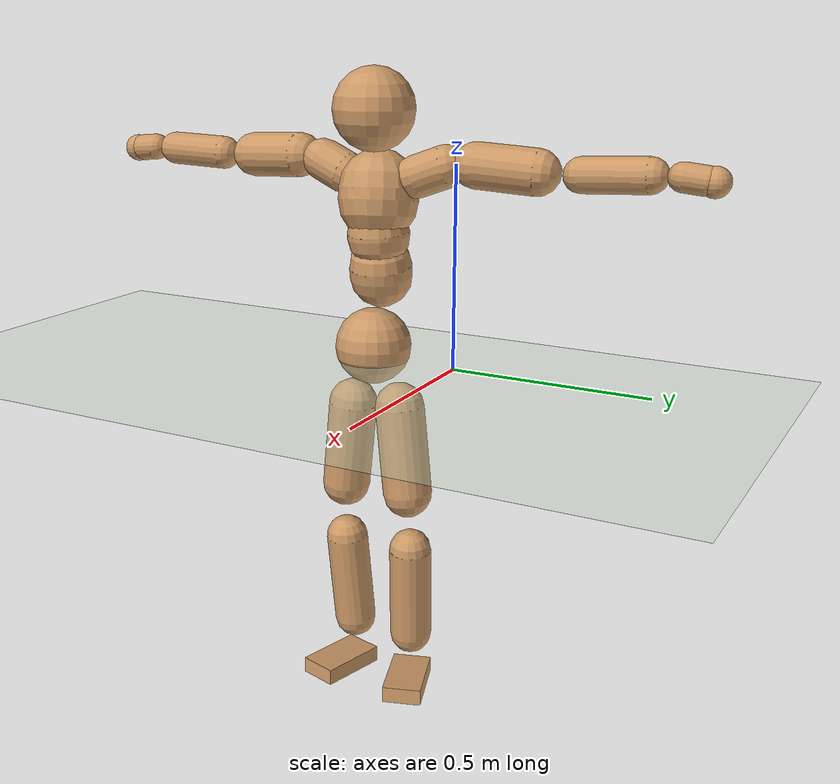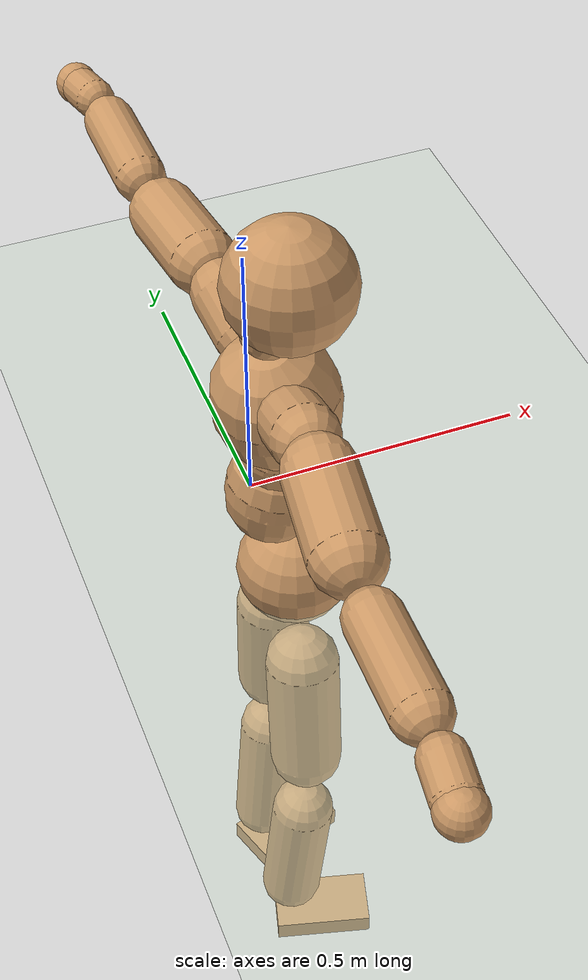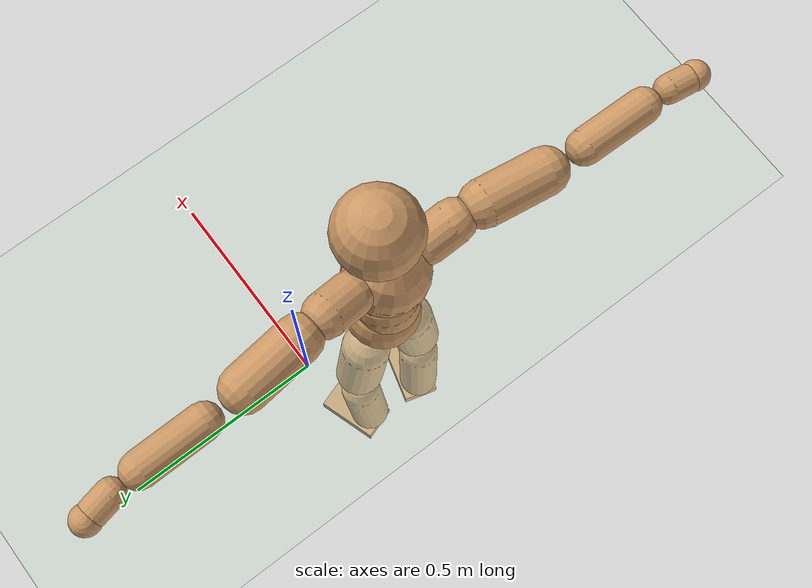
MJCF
<mujoco model="humanoid">
  <compiler coordinate="local"/>
  <default>
    <joint damping="0.0" armature="0.01" stiffness="0.0" limited="true"/>
    <geom conaffinity="1" condim="3" contype="7" margin="0.001" rgba="0.8 0.6 .4 1"/>
  </default>
  <asset>
    <texture type="skybox" builtin="gradient" rgb1=".4 .5 .6" rgb2="0 0 0" width="100" height="100"/>
    <texture builtin="flat" height="1278" mark="cross" markrgb="1 1 1" name="texgeom" random="0.01" rgb1="0.8 0.6 0.4" rgb2="0.8 0.6 0.4" type="cube" width="127"/>
    <texture builtin="checker" height="100" name="texplane" rgb1="0 0 0" rgb2="0.8 0.8 0.8" type="2d" width="100"/>
    <material name="MatPlane" reflectance="0.5" shininess="1" specular="1" texrepeat="60 60" texture="texplane"/>
    <material name="geom" texture="texgeom" texuniform="true"/>
  </asset>
  <worldbody>
    <light cutoff="100" diffuse="1 1 1" dir="-0 0 -1.3" directional="true" exponent="1" pos="0 0 1.3" specular=".1 .1 .1"/>
    <geom conaffinity="1" condim="3" name="floor" pos="0 0 0" rgba="0.8 0.9 0.8 1" size="100 100 .2" type="plane" material="MatPlane"/>
    <body name="Pelvis" pos="-0.0031 -0.2266 0.0322">
      <freejoint name="Pelvis"/>
      <geom type="sphere" contype="1" conaffinity="1" density="500" size="0.0968" pos="0.0000 0.0000 0.0000" name="Pelvis"/>
      <body name="L_Hip" pos="-0.017 0.0588 -0.0808">
        <joint name="L_Hip_x" type="hinge" pos="0 0 0" axis="1 0 0" stiffness="800" damping="80" armature="0.02" range="-180.0000 180.0000"/>
        <joint name="L_Hip_y" type="hinge" pos="0 0 0" axis="0 1 0" stiffness="800" damping="80" armature="0.02" range="-180.0000 180.0000"/>
        <joint name="L_Hip_z" type="hinge" pos="0 0 0" axis="0 0 1" stiffness="800" damping="80" armature="0.02" range="-180.0000 180.0000"/>
        <geom type="capsule" contype="1" conaffinity="1" density="500" fromto="0.0017 0.0088 -0.0773 0.0066 0.0350 -0.3091" size="0.0636" name="L_Hip"/>
        <body name="L_Knee" pos="0.0083 0.0438 -0.3863">
          <joint name="L_Knee_x" type="hinge" pos="0 0 0" axis="1 0 0" stiffness="800" damping="80" armature="0.02" range="-180.0000 180.0000"/>
          <joint name="L_Knee_y" type="hinge" pos="0 0 0" axis="0 1 0" stiffness="800" damping="80" armature="0.02" range="-180.0000 180.0000"/>
          <joint name="L_Knee_z" type="hinge" pos="0 0 0" axis="0 0 1" stiffness="800" damping="80" armature="0.02" range="-180.0000 180.0000"/>
          <geom type="capsule" contype="1" conaffinity="1" density="500" fromto="-0.0075 -0.0030 -0.0859 -0.0298 -0.0120 -0.3434" size="0.0554" name="L_Knee"/>
          <body name="L_Ankle" pos="-0.0373 -0.015 -0.4293">
            <joint name="L_Ankle_x" type="hinge" pos="0 0 0" axis="1 0 0" stiffness="800" damping="80" armature="0.02" range="-180.0000 180.0000"/>
            <joint name="L_Ankle_y" type="hinge" pos="0 0 0" axis="0 1 0" stiffness="800" damping="80" armature="0.02" range="-180.0000 180.0000"/>
            <joint name="L_Ankle_z" type="hinge" pos="0 0 0" axis="0 0 1" stiffness="800" damping="80" armature="0.02" range="-180.0000 180.0000"/>
            <geom type="box" contype="1" conaffinity="1" density="500" pos="0.0604 0.0197 -0.0298" size="0.0893 0.0512 0.0214" quat="0.9876 0.0000 0.0000 0.1570" name="L_Ankle"/>
            <body name="L_Toe" pos="0.1207 0.0394 -0.0596">
              <joint name="L_Toe_x" type="hinge" pos="0 0 0" axis="1 0 0" stiffness="500" damping="50" armature="0.02" range="-180.0000 180.0000"/>
              <joint name="L_Toe_y" type="hinge" pos="0 0 0" axis="0 1 0" stiffness="500" damping="50" armature="0.02" range="-180.0000 180.0000"/>
              <joint name="L_Toe_z" type="hinge" pos="0 0 0" axis="0 0 1" stiffness="500" damping="50" armature="0.02" range="-180.0000 180.0000"/>
              <geom type="box" contype="1" conaffinity="1" density="500" pos="0.0000 0.0000 0.0281" size="0.0011 0.0025 0.001" quat="0.9868 0.0000 0.0000 0.1619" name="L_Toe"/>
            </body>
          </body>
        </body>
      </body>
      <body name="R_Hip" pos="-0.0122 -0.0606 -0.0892">
        <joint name="R_Hip_x" type="hinge" pos="0 0 0" axis="1 0 0" stiffness="800" damping="80" armature="0.02" range="-180.0000 180.0000"/>
        <joint name="R_Hip_y" type="hinge" pos="0 0 0" axis="0 1 0" stiffness="800" damping="80" armature="0.02" range="-180.0000 180.0000"/>
        <joint name="R_Hip_z" type="hinge" pos="0 0 0" axis="0 0 1" stiffness="800" damping="80" armature="0.02" range="-180.0000 180.0000"/>
        <geom type="capsule" contype="1" conaffinity="1" density="500" fromto="-0.0011 -0.0085 -0.0766 -0.0046 -0.0341 -0.3066" size="0.0629" name="R_Hip"/>
        <body name="R_Knee" pos="-0.0057 -0.0426 -0.3832">
          <joint name="R_Knee_x" type="hinge" pos="0 0 0" axis="1 0 0" stiffness="800" damping="80" armature="0.02" range="-180.0000 180.0000"/>
          <joint name="R_Knee_y" type="hinge" pos="0 0 0" axis="0 1 0" stiffness="800" damping="80" armature="0.02" range="-180.0000 180.0000"/>
          <joint name="R_Knee_z" type="hinge" pos="0 0 0" axis="0 0 1" stiffness="800" damping="80" armature="0.02" range="-180.0000 180.0000"/>
          <geom type="capsule" contype="1" conaffinity="1" density="500" fromto="-0.0070 0.0038 -0.0843 -0.0279 0.0153 -0.3372" size="0.0554" name="R_Knee"/>
          <body name="R_Ankle" pos="-0.0349 0.0191 -0.4215">
            <joint name="R_Ankle_x" type="hinge" pos="0 0 0" axis="1 0 0" stiffness="800" damping="80" armature="0.02" range="-180.0000 180.0000"/>
            <joint name="R_Ankle_y" type="hinge" pos="0 0 0" axis="0 1 0" stiffness="800" damping="80" armature="0.02" range="-180.0000 180.0000"/>
            <joint name="R_Ankle_z" type="hinge" pos="0 0 0" axis="0 0 1" stiffness="800" damping="80" armature="0.02" range="-180.0000 180.0000"/>
            <geom type="box" contype="1" conaffinity="1" density="500" pos="0.0645 -0.0178 -0.0302" size="0.0902 0.051 0.0215" quat="0.9910 0.0000 0.0000 -0.1342" name="R_Ankle"/>
            <body name="R_Toe" pos="0.129 -0.0356 -0.0604">
              <joint name="R_Toe_x" type="hinge" pos="0 0 0" axis="1 0 0" stiffness="500" damping="50" armature="0.02" range="-180.0000 180.0000"/>
              <joint name="R_Toe_y" type="hinge" pos="0 0 0" axis="0 1 0" stiffness="500" damping="50" armature="0.02" range="-180.0000 180.0000"/>
              <joint name="R_Toe_z" type="hinge" pos="0 0 0" axis="0 0 1" stiffness="500" damping="50" armature="0.02" range="-180.0000 180.0000"/>
              <geom type="box" contype="1" conaffinity="1" density="500" pos="0.0000 0.0000 0.0294" size="0.0011 0.0025 0.001" quat="0.9921 0.0000 0.0000 -0.1252" name="R_Toe"/>
            </body>
          </body>
        </body>
      </body>
      <body name="Torso" pos="-0.041 0.0045 0.1225">
        <joint name="Torso_x" type="hinge" pos="0 0 0" axis="1 0 0" stiffness="1000" damping="100" armature="0.02" range="-180.0000 180.0000"/>
        <joint name="Torso_y" type="hinge" pos="0 0 0" axis="0 1 0" stiffness="1000" damping="100" armature="0.02" range="-180.0000 180.0000"/>
        <joint name="Torso_z" type="hinge" pos="0 0 0" axis="0 0 1" stiffness="1000" damping="100" armature="0.02" range="-180.0000 180.0000"/>
        <geom type="capsule" contype="1" conaffinity="1" density="500" fromto="0.0145 0.0023 0.0792 0.0097 0.0016 0.0528" size="0.0789" name="Torso"/>
        <body name="Spine" pos="0.0242 0.0039 0.132">
          <joint name="Spine_x" type="hinge" pos="0 0 0" axis="1 0 0" stiffness="1000" damping="100" armature="0.02" range="-180.0000 180.0000"/>
          <joint name="Spine_y" type="hinge" pos="0 0 0" axis="0 1 0" stiffness="1000" damping="100" armature="0.02" range="-180.0000 180.0000"/>
          <joint name="Spine_z" type="hinge" pos="0 0 0" axis="0 0 1" stiffness="1000" damping="100" armature="0.02" range="-180.0000 180.0000"/>
          <geom type="capsule" contype="1" conaffinity="1" density="500" fromto="0.0021 -0.0011 0.0319 0.0014 -0.0007 0.0213" size="0.0778" name="Spine"/>
          <body name="Chest" pos="0.0035 -0.0019 0.0532">
            <joint name="Chest_x" type="hinge" pos="0 0 0" axis="1 0 0" stiffness="1000" damping="100" armature="0.02" range="-180.0000 180.0000"/>
            <joint name="Chest_y" type="hinge" pos="0 0 0" axis="0 1 0" stiffness="1000" damping="100" armature="0.02" range="-180.0000 180.0000"/>
            <joint name="Chest_z" type="hinge" pos="0 0 0" axis="0 0 1" stiffness="1000" damping="100" armature="0.02" range="-180.0000 180.0000"/>
            <geom type="capsule" contype="1" conaffinity="1" density="500" fromto="-0.0140 -0.0045 0.0835 -0.0093 -0.0030 0.0557" size="0.1001" name="Chest"/>
            <body name="Neck" pos="-0.0328 -0.0128 0.1991">
              <joint name="Neck_x" type="hinge" pos="0 0 0" axis="1 0 0" stiffness="500" damping="50" armature="0.02" range="-180.0000 180.0000"/>
              <joint name="Neck_y" type="hinge" pos="0 0 0" axis="0 1 0" stiffness="500" damping="50" armature="0.02" range="-180.0000 180.0000"/>
              <joint name="Neck_z" type="hinge" pos="0 0 0" axis="0 0 1" stiffness="500" damping="50" armature="0.02" range="-180.0000 180.0000"/>
              <geom type="capsule" contype="1" conaffinity="1" density="500" fromto="0.0089 0.0021 0.0157 0.0357 0.0084 0.0628" size="0.0443" name="Neck"/>
              <body name="Head" pos="0.0446 0.0105 0.0785">
                <joint name="Head_x" type="hinge" pos="0 0 0" axis="1 0 0" stiffness="500" damping="50" armature="0.02" range="-180.0000 180.0000"/>
                <joint name="Head_y" type="hinge" pos="0 0 0" axis="0 1 0" stiffness="500" damping="50" armature="0.02" range="-180.0000 180.0000"/>
                <joint name="Head_z" type="hinge" pos="0 0 0" axis="0 0 1" stiffness="500" damping="50" armature="0.02" range="-180.0000 180.0000"/>
                <geom type="sphere" contype="1" conaffinity="1" density="500" size="0.1021" pos="0.0000 0.0000 0.0000" name="Head"/>
              </body>
            </body>
            <body name="L_Thorax" pos="-0.0157 0.0718 0.1104">
              <joint name="L_Thorax_x" type="hinge" pos="0 0 0" axis="1 0 0" stiffness="500" damping="50" armature="0.02" range="-180.0000 180.0000"/>
              <joint name="L_Thorax_y" type="hinge" pos="0 0 0" axis="0 1 0" stiffness="500" damping="50" armature="0.02" range="-180.0000 180.0000"/>
              <joint name="L_Thorax_z" type="hinge" pos="0 0 0" axis="0 0 1" stiffness="500" damping="50" armature="0.02" range="-180.0000 180.0000"/>
              <geom type="capsule" contype="1" conaffinity="1" density="500" fromto="-0.0037 0.0245 0.0091 -0.0150 0.0981 0.0365" size="0.0528" name="L_Thorax"/>
              <body name="L_Shoulder" pos="-0.0187 0.1226 0.0457">
                <joint name="L_Shoulder_x" type="hinge" pos="0 0 0" axis="1 0 0" stiffness="500" damping="50" armature="0.02" range="-720.0000 720.0000"/>
                <joint name="L_Shoulder_y" type="hinge" pos="0 0 0" axis="0 1 0" stiffness="500" damping="50" armature="0.02" range="-720.0000 720.0000"/>
                <joint name="L_Shoulder_z" type="hinge" pos="0 0 0" axis="0 0 1" stiffness="500" damping="50" armature="0.02" range="-720.0000 720.0000"/>
                <geom type="capsule" contype="1" conaffinity="1" density="500" fromto="-0.0051 0.0502 -0.0032 -0.0203 0.2007 -0.0126" size="0.0558" name="L_Shoulder"/>
                <body name="L_Elbow" pos="-0.0253 0.2509 -0.0158">
                  <joint name="L_Elbow_x" type="hinge" pos="0 0 0" axis="1 0 0" stiffness="500" damping="50" armature="0.02" range="-720.0000 720.0000"/>
                  <joint name="L_Elbow_y" type="hinge" pos="0 0 0" axis="0 1 0" stiffness="500" damping="50" armature="0.02" range="-720.0000 720.0000"/>
                  <joint name="L_Elbow_z" type="hinge" pos="0 0 0" axis="0 0 1" stiffness="500" damping="50" armature="0.02" range="-720.0000 720.0000"/>
                  <geom type="capsule" contype="1" conaffinity="1" density="500" fromto="-0.0014 0.0536 0.0027 -0.0054 0.2143 0.0109" size="0.0426" name="L_Elbow"/>
                  <body name="L_Wrist" pos="-0.0068 0.2679 0.0136">
                    <joint name="L_Wrist_x" type="hinge" pos="0 0 0" axis="1 0 0" stiffness="300" damping="30" armature="0.02" range="-180.0000 180.0000"/>
                    <joint name="L_Wrist_y" type="hinge" pos="0 0 0" axis="0 1 0" stiffness="300" damping="30" armature="0.02" range="-180.0000 180.0000"/>
                    <joint name="L_Wrist_z" type="hinge" pos="0 0 0" axis="0 0 1" stiffness="300" damping="30" armature="0.02" range="-180.0000 180.0000"/>
                    <geom type="capsule" contype="1" conaffinity="1" density="500" fromto="-0.0032 0.0174 -0.0022 -0.0127 0.0697 -0.0086" size="0.0341" name="L_Wrist"/>
                    <body name="L_Hand" pos="-0.0158 0.0871 -0.0108">
                      <joint name="L_Hand_x" type="hinge" pos="0 0 0" axis="1 0 0" stiffness="300" damping="30" armature="0.02" range="-180.0000 180.0000"/>
                      <joint name="L_Hand_y" type="hinge" pos="0 0 0" axis="0 1 0" stiffness="300" damping="30" armature="0.02" range="-180.0000 180.0000"/>
                      <joint name="L_Hand_z" type="hinge" pos="0 0 0" axis="0 0 1" stiffness="300" damping="30" armature="0.02" range="-180.0000 180.0000"/>
                      <geom type="sphere" contype="1" conaffinity="1" density="500" size="0.0357" pos="0.0000 0.0000 0.0000" name="L_Hand"/>
                    </body>
                  </body>
                </body>
              </body>
            </body>
            <body name="R_Thorax" pos="-0.0214 -0.0813 0.1081">
              <joint name="R_Thorax_x" type="hinge" pos="0 0 0" axis="1 0 0" stiffness="500" damping="50" armature="0.02" range="-180.0000 180.0000"/>
              <joint name="R_Thorax_y" type="hinge" pos="0 0 0" axis="0 1 0" stiffness="500" damping="50" armature="0.02" range="-180.0000 180.0000"/>
              <joint name="R_Thorax_z" type="hinge" pos="0 0 0" axis="0 0 1" stiffness="500" damping="50" armature="0.02" range="-180.0000 180.0000"/>
              <geom type="capsule" contype="1" conaffinity="1" density="500" fromto="-0.0017 -0.0224 0.0095 -0.0070 -0.0896 0.0378" size="0.0526" name="R_Thorax"/>
              <body name="R_Shoulder" pos="-0.0087 -0.1121 0.0473">
                <joint name="R_Shoulder_x" type="hinge" pos="0 0 0" axis="1 0 0" stiffness="500" damping="50" armature="0.02" range="-720.0000 720.0000"/>
                <joint name="R_Shoulder_y" type="hinge" pos="0 0 0" axis="0 1 0" stiffness="500" damping="50" armature="0.02" range="-720.0000 720.0000"/>
                <joint name="R_Shoulder_z" type="hinge" pos="0 0 0" axis="0 0 1" stiffness="500" damping="50" armature="0.02" range="-720.0000 720.0000"/>
                <geom type="capsule" contype="1" conaffinity="1" density="500" fromto="-0.0067 -0.0514 -0.0029 -0.0268 -0.2054 -0.0115" size="0.0562" name="R_Shoulder"/>
                <body name="R_Elbow" pos="-0.0336 -0.2568 -0.0144">
                  <joint name="R_Elbow_x" type="hinge" pos="0 0 0" axis="1 0 0" stiffness="500" damping="50" armature="0.02" range="-720.0000 720.0000"/>
                  <joint name="R_Elbow_y" type="hinge" pos="0 0 0" axis="0 1 0" stiffness="500" damping="50" armature="0.02" range="-720.0000 720.0000"/>
                  <joint name="R_Elbow_z" type="hinge" pos="0 0 0" axis="0 0 1" stiffness="500" damping="50" armature="0.02" range="-720.0000 720.0000"/>
                  <geom type="capsule" contype="1" conaffinity="1" density="500" fromto="-0.0011 -0.0539 0.0012 -0.0045 -0.2155 0.0049" size="0.0428" name="R_Elbow"/>
                  <body name="R_Wrist" pos="-0.0056 -0.2693 0.0062">
                    <joint name="R_Wrist_x" type="hinge" pos="0 0 0" axis="1 0 0" stiffness="300" damping="30" armature="0.02" range="-180.0000 180.0000"/>
                    <joint name="R_Wrist_y" type="hinge" pos="0 0 0" axis="0 1 0" stiffness="300" damping="30" armature="0.02" range="-180.0000 180.0000"/>
                    <joint name="R_Wrist_z" type="hinge" pos="0 0 0" axis="0 0 1" stiffness="300" damping="30" armature="0.02" range="-180.0000 180.0000"/>
                    <geom type="capsule" contype="1" conaffinity="1" density="500" fromto="-0.0021 -0.0177 -0.0017 -0.0082 -0.0709 -0.0070" size="0.0345" name="R_Wrist"/>
                    <body name="R_Hand" pos="-0.0103 -0.0886 -0.0087">
                      <joint name="R_Hand_x" type="hinge" pos="0 0 0" axis="1 0 0" stiffness="300" damping="30" armature="0.02" range="-180.0000 180.0000"/>
                      <joint name="R_Hand_y" type="hinge" pos="0 0 0" axis="0 1 0" stiffness="300" damping="30" armature="0.02" range="-180.0000 180.0000"/>
                      <joint name="R_Hand_z" type="hinge" pos="0 0 0" axis="0 0 1" stiffness="300" damping="30" armature="0.02" range="-180.0000 180.0000"/>
                      <geom type="sphere" contype="1" conaffinity="1" density="500" size="0.0359" pos="0.0000 0.0000 0.0000" name="R_Hand"/>
                    </body>
                  </body>
                </body>
              </body>
            </body>
          </body>
        </body>
      </body>
    </body>
  </worldbody>
  <actuator>
    <motor name="L_Hip_x" joint="L_Hip_x" gear="500"/>
    <motor name="L_Hip_y" joint="L_Hip_y" gear="500"/>
    <motor name="L_Hip_z" joint="L_Hip_z" gear="500"/>
    <motor name="L_Knee_x" joint="L_Knee_x" gear="500"/>
    <motor name="L_Knee_y" joint="L_Knee_y" gear="500"/>
    <motor name="L_Knee_z" joint="L_Knee_z" gear="500"/>
    <motor name="L_Ankle_x" joint="L_Ankle_x" gear="500"/>
    <motor name="L_Ankle_y" joint="L_Ankle_y" gear="500"/>
    <motor name="L_Ankle_z" joint="L_Ankle_z" gear="500"/>
    <motor name="L_Toe_x" joint="L_Toe_x" gear="500"/>
    <motor name="L_Toe_y" joint="L_Toe_y" gear="500"/>
    <motor name="L_Toe_z" joint="L_Toe_z" gear="500"/>
    <motor name="R_Hip_x" joint="R_Hip_x" gear="500"/>
    <motor name="R_Hip_y" joint="R_Hip_y" gear="500"/>
    <motor name="R_Hip_z" joint="R_Hip_z" gear="500"/>
    <motor name="R_Knee_x" joint="R_Knee_x" gear="500"/>
    <motor name="R_Knee_y" joint="R_Knee_y" gear="500"/>
    <motor name="R_Knee_z" joint="R_Knee_z" gear="500"/>
    <motor name="R_Ankle_x" joint="R_Ankle_x" gear="500"/>
    <motor name="R_Ankle_y" joint="R_Ankle_y" gear="500"/>
    <motor name="R_Ankle_z" joint="R_Ankle_z" gear="500"/>
    <motor name="R_Toe_x" joint="R_Toe_x" gear="500"/>
    <motor name="R_Toe_y" joint="R_Toe_y" gear="500"/>
    <motor name="R_Toe_z" joint="R_Toe_z" gear="500"/>
    <motor name="Torso_x" joint="Torso_x" gear="500"/>
    <motor name="Torso_y" joint="Torso_y" gear="500"/>
    <motor name="Torso_z" joint="Torso_z" gear="500"/>
    <motor name="Spine_x" joint="Spine_x" gear="500"/>
    <motor name="Spine_y" joint="Spine_y" gear="500"/>
    <motor name="Spine_z" joint="Spine_z" gear="500"/>
    <motor name="Chest_x" joint="Chest_x" gear="500"/>
    <motor name="Chest_y" joint="Chest_y" gear="500"/>
    <motor name="Chest_z" joint="Chest_z" gear="500"/>
    <motor name="Neck_x" joint="Neck_x" gear="500"/>
    <motor name="Neck_y" joint="Neck_y" gear="500"/>
    <motor name="Neck_z" joint="Neck_z" gear="500"/>
    <motor name="Head_x" joint="Head_x" gear="500"/>
    <motor name="Head_y" joint="Head_y" gear="500"/>
    <motor name="Head_z" joint="Head_z" gear="500"/>
    <motor name="L_Thorax_x" joint="L_Thorax_x" gear="500"/>
    <motor name="L_Thorax_y" joint="L_Thorax_y" gear="500"/>
    <motor name="L_Thorax_z" joint="L_Thorax_z" gear="500"/>
    <motor name="L_Shoulder_x" joint="L_Shoulder_x" gear="500"/>
    <motor name="L_Shoulder_y" joint="L_Shoulder_y" gear="500"/>
    <motor name="L_Shoulder_z" joint="L_Shoulder_z" gear="500"/>
    <motor name="L_Elbow_x" joint="L_Elbow_x" gear="500"/>
    <motor name="L_Elbow_y" joint="L_Elbow_y" gear="500"/>
    <motor name="L_Elbow_z" joint="L_Elbow_z" gear="500"/>
    <motor name="L_Wrist_x" joint="L_Wrist_x" gear="500"/>
    <motor name="L_Wrist_y" joint="L_Wrist_y" gear="500"/>
    <motor name="L_Wrist_z" joint="L_Wrist_z" gear="500"/>
    <motor name="L_Hand_x" joint="L_Hand_x" gear="500"/>
    <motor name="L_Hand_y" joint="L_Hand_y" gear="500"/>
    <motor name="L_Hand_z" joint="L_Hand_z" gear="500"/>
    <motor name="R_Thorax_x" joint="R_Thorax_x" gear="500"/>
    <motor name="R_Thorax_y" joint="R_Thorax_y" gear="500"/>
    <motor name="R_Thorax_z" joint="R_Thorax_z" gear="500"/>
    <motor name="R_Shoulder_x" joint="R_Shoulder_x" gear="500"/>
    <motor name="R_Shoulder_y" joint="R_Shoulder_y" gear="500"/>
    <motor name="R_Shoulder_z" joint="R_Shoulder_z" gear="500"/>
    <motor name="R_Elbow_x" joint="R_Elbow_x" gear="500"/>
    <motor name="R_Elbow_y" joint="R_Elbow_y" gear="500"/>
    <motor name="R_Elbow_z" joint="R_Elbow_z" gear="500"/>
    <motor name="R_Wrist_x" joint="R_Wrist_x" gear="500"/>
    <motor name="R_Wrist_y" joint="R_Wrist_y" gear="500"/>
    <motor name="R_Wrist_z" joint="R_Wrist_z" gear="500"/>
    <motor name="R_Hand_x" joint="R_Hand_x" gear="500"/>
    <motor name="R_Hand_y" joint="R_Hand_y" gear="500"/>
    <motor name="R_Hand_z" joint="R_Hand_z" gear="500"/>
  </actuator>
  <contact>
    <exclude body1="Torso" body2="Chest"/>
    <exclude body1="Head" body2="Chest"/>
    <exclude body1="R_Knee" body2="R_Toe"/>
    <exclude body1="R_Knee" body2="L_Ankle"/>
    <exclude body1="R_Knee" body2="L_Toe"/>
    <exclude body1="L_Knee" body2="L_Toe"/>
    <exclude body1="L_Knee" body2="R_Ankle"/>
    <exclude body1="L_Knee" body2="R_Toe"/>
    <exclude body1="L_Shoulder" body2="Chest"/>
    <exclude body1="R_Shoulder" body2="Chest"/>
  </contact>
  <sensor/>
  <size njmax="700" nconmax="700"/>
</mujoco>
